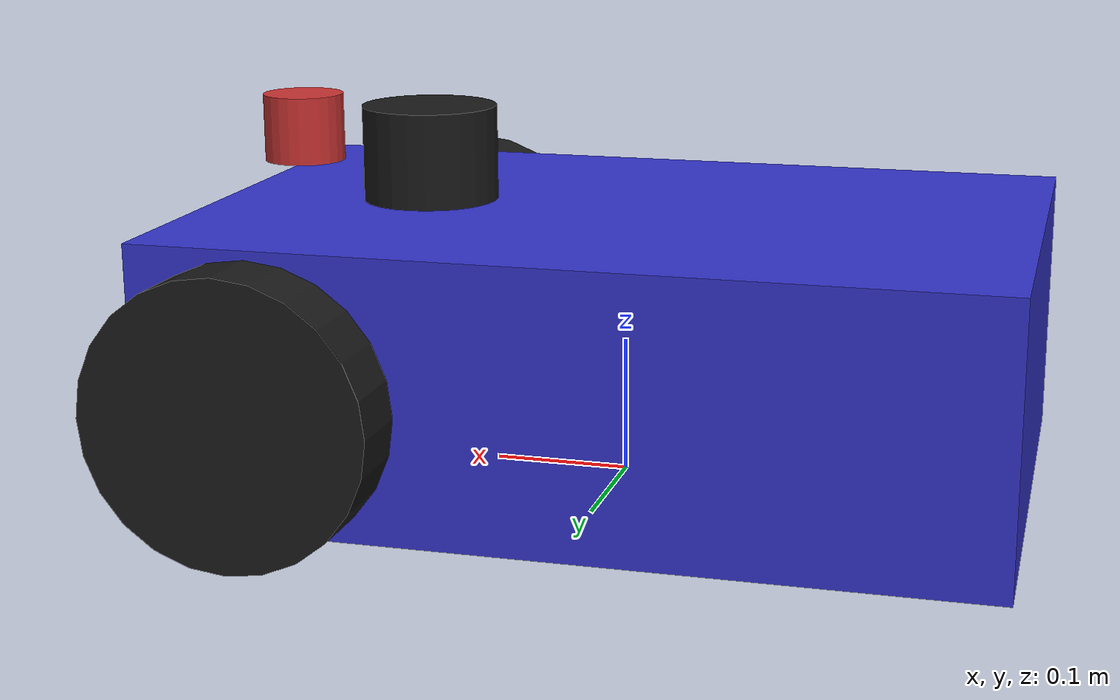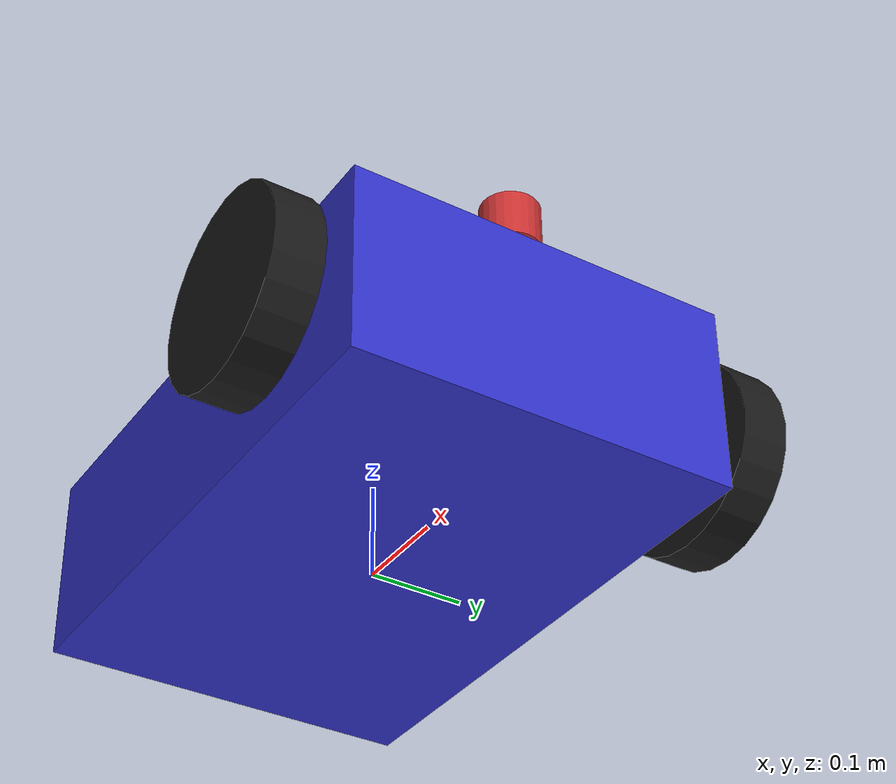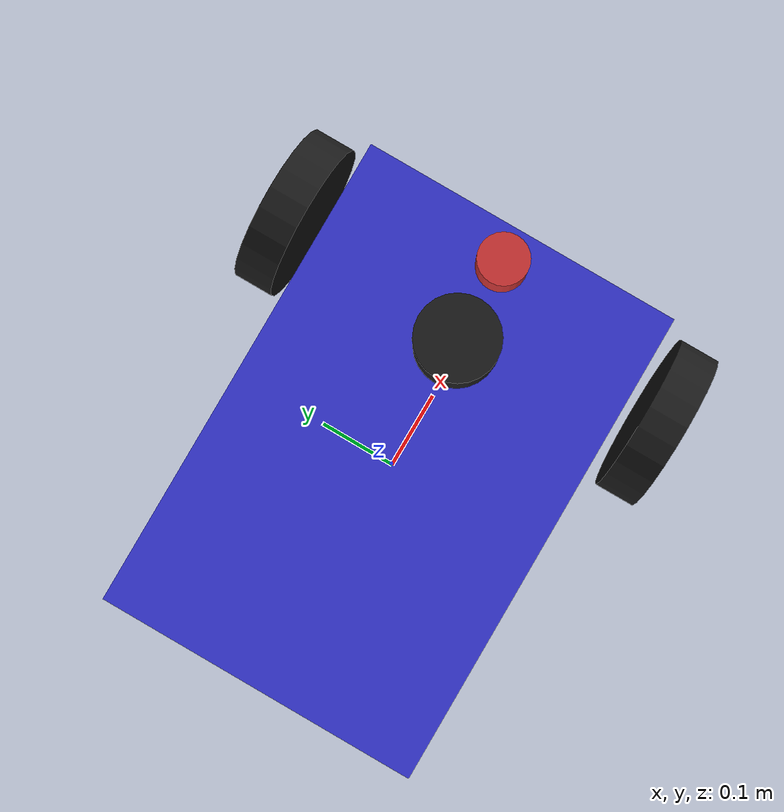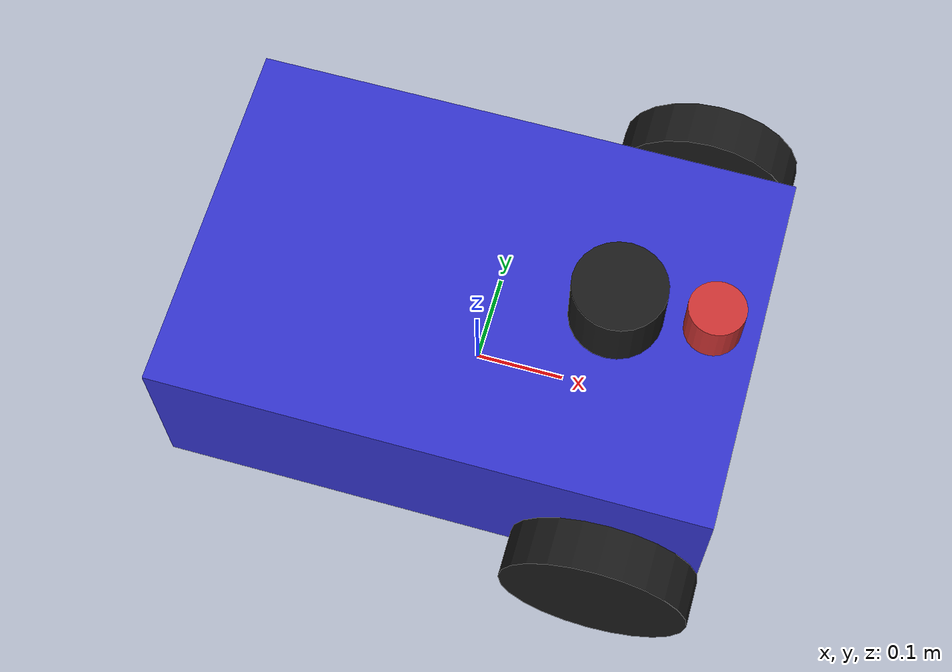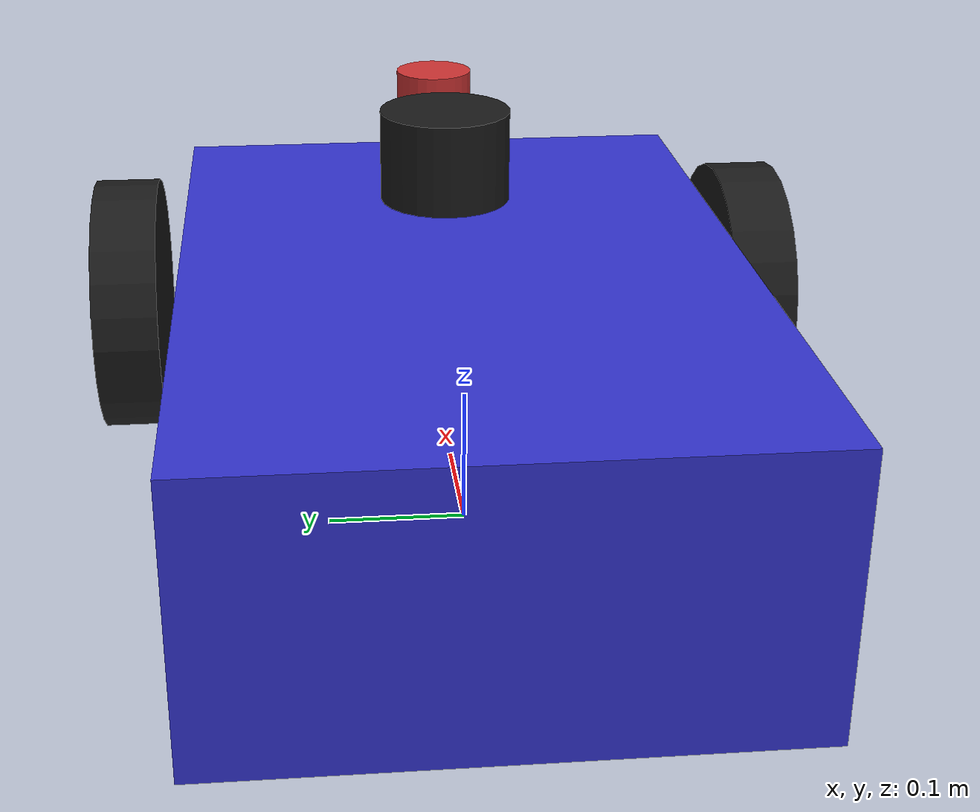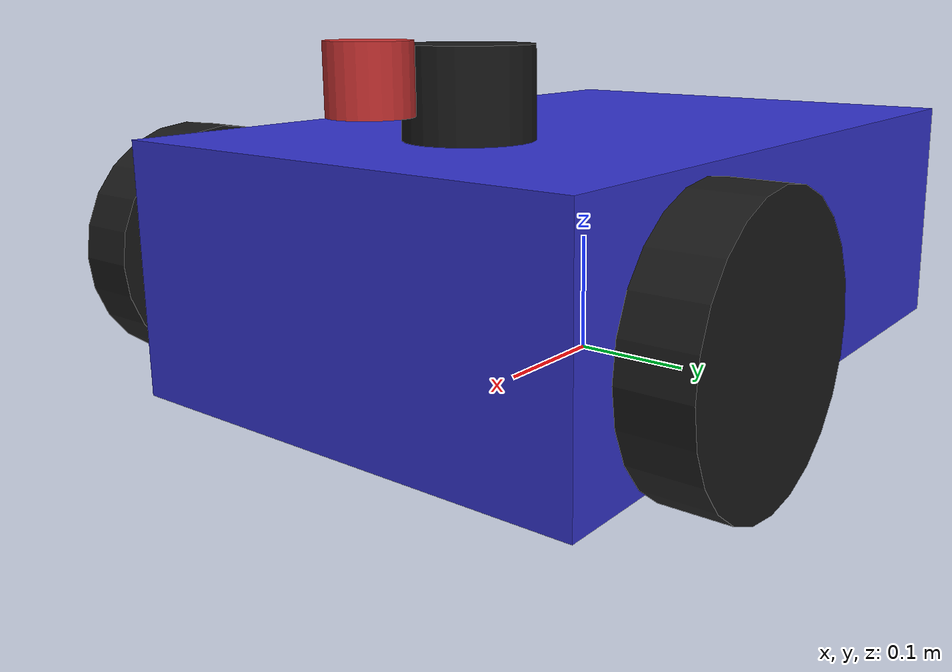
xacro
<?xml version="1.0"?>
<robot xmlns:xacro="http://www.ros.org/wiki/xacro" name="whistle_robot">

  <!-- Define constants -->
  <xacro:property name="base_width" value="0.4"/>
  <xacro:property name="base_length" value="0.6"/>
  <xacro:property name="base_height" value="0.2"/>
  <xacro:property name="wheel_radius" value="0.1"/>
  <xacro:property name="wheel_width" value="0.05"/>
  <xacro:property name="wheel_separation" value="0.5"/>
  <xacro:property name="wheel_base" value="0.4"/>

  <!-- Materials -->
  <material name="blue">
    <color rgba="0.2 0.2 0.8 1.0"/>
  </material>

  <material name="black">
    <color rgba="0.1 0.1 0.1 1.0"/>
  </material>

  <material name="red">
    <color rgba="0.8 0.2 0.2 1.0"/>
  </material>

  <!-- Base Link (Main body) -->
  <link name="base_link">
    <visual>
      <geometry>
        <box size="${base_length} ${base_width} ${base_height}"/>
      </geometry>
      <material name="blue"/>
    </visual>
    <collision>
      <geometry>
        <box size="${base_length} ${base_width} ${base_height}"/>
      </geometry>
    </collision>
    <inertial>
      <mass value="10.0"/>
      <inertia ixx="0.133" ixy="0.0" ixz="0.0"
               iyy="0.433" iyz="0.0" izz="0.5"/>
    </inertial>
  </link>

  <!-- Base Footprint (for navigation) -->
  <link name="base_footprint"/>

  <joint name="base_footprint_joint" type="fixed">
    <parent link="base_footprint"/>
    <child link="base_link"/>
    <origin xyz="0 0 ${wheel_radius}" rpy="0 0 0"/>
  </joint>

  <!-- Wheel macro -->
  <xacro:macro name="wheel" params="prefix reflect">
    <link name="${prefix}_wheel">
      <visual>
        <geometry>
          <cylinder radius="${wheel_radius}" length="${wheel_width}"/>
        </geometry>
        <material name="black"/>
        <origin xyz="0 0 0" rpy="${pi/2} 0 0"/>
      </visual>
      <collision>
        <geometry>
          <cylinder radius="${wheel_radius}" length="${wheel_width}"/>
        </geometry>
        <origin xyz="0 0 0" rpy="${pi/2} 0 0"/>
      </collision>
      <inertial>
        <mass value="1.0"/>
        <inertia ixx="0.00208" ixy="0.0" ixz="0.0"
                 iyy="0.00208" iyz="0.0" izz="0.00417"/>
      </inertial>
    </link>

    <joint name="${prefix}_wheel_joint" type="continuous">
      <parent link="base_link"/>
      <child link="${prefix}_wheel"/>
      <origin xyz="${wheel_base/2} ${reflect * wheel_separation/2} 0" rpy="0 0 0"/>
      <axis xyz="0 1 0"/>
    </joint>
  </xacro:macro>

  <!-- Create wheels -->
  <xacro:wheel prefix="left" reflect="1"/>
  <xacro:wheel prefix="right" reflect="-1"/>

  <!-- Caster wheel (front) -->
  <link name="caster_wheel">
    <visual>
      <geometry>
        <sphere radius="${wheel_radius/2}"/>
      </geometry>
      <material name="black"/>
    </visual>
    <collision>
      <geometry>
        <sphere radius="${wheel_radius/2}"/>
      </geometry>
    </collision>
    <inertial>
      <mass value="0.5"/>
      <inertia ixx="0.0001" ixy="0.0" ixz="0.0"
               iyy="0.0001" iyz="0.0" izz="0.0001"/>
    </inertial>
  </link>

  <joint name="caster_wheel_joint" type="fixed">
    <parent link="base_link"/>
    <child link="caster_wheel"/>
    <origin xyz="-${wheel_base/2} 0 -${wheel_radius/2}" rpy="0 0 0"/>
  </joint>

  <!-- Microphone sensor (visual representation) -->
  <link name="microphone_link">
    <visual>
      <geometry>
        <cylinder radius="0.03" length="0.05"/>
      </geometry>
      <material name="red"/>
      <origin xyz="0 0 0" rpy="0 0 0"/>
    </visual>
    <inertial>
      <mass value="0.1"/>
      <inertia ixx="0.0001" ixy="0.0" ixz="0.0"
               iyy="0.0001" iyz="0.0" izz="0.0001"/>
    </inertial>
  </link>

  <joint name="microphone_joint" type="fixed">
    <parent link="base_link"/>
    <child link="microphone_link"/>
    <origin xyz="0.25 0 ${base_height/2 + 0.05}" rpy="0 0 0"/>
  </joint>
  <!-- Lidar Link -->
  <link name="lidar_link">
    <visual>
      <geometry>
        <cylinder radius="0.05" length="0.07"/>
      </geometry>
      <material name="black"/>
      <origin xyz="0 0 0" rpy="0 0 0"/>
    </visual>
    <collision>
      <geometry>
        <cylinder radius="0.05" length="0.07"/>
      </geometry>
    </collision>
    <inertial>
      <mass value="0.125"/>
      <inertia ixx="0.0001" ixy="0.0" ixz="0.0"
               iyy="0.0001" iyz="0.0" izz="0.0001"/>
    </inertial>
  </link>

  <joint name="lidar_joint" type="fixed">
    <parent link="base_link"/>
    <child link="lidar_link"/>
    <origin xyz="0.15 0 ${base_height/2 + 0.035}" rpy="0 0 0"/>
  </joint>

  <!-- Gazebo Lidar Plugin -->
  <gazebo reference="lidar_link">
    <sensor type="ray" name="lidar_sensor">
      <pose>0 0 0 0 0 0</pose>
      <visualize>true</visualize>
      <update_rate>10</update_rate>
      <ray>
        <scan>
          <horizontal>
            <samples>360</samples>
            <resolution>1</resolution>
            <min_angle>-3.14159</min_angle>
            <max_angle>3.14159</max_angle>
          </horizontal>
        </scan>
        <range>
          <min>0.2</min>
          <max>10.0</max>
          <resolution>0.01</resolution>
        </range>
        <noise>
          <type>gaussian</type>
          <mean>0.0</mean>
          <stddev>0.01</stddev>
        </noise>
      </ray>
      <plugin name="gazebo_ros_lidar" filename="libgazebo_ros_ray_sensor.so">
        <ros>
          <namespace>/</namespace>
          <remapping>~/out:=scan</remapping>
        </ros>
        <output_type>sensor_msgs/LaserScan</output_type>
        <frame_name>lidar_link</frame_name>
      </plugin>
    </sensor>
  </gazebo>

  <!-- Gazebo differential drive plugin -->
  <gazebo>
    <plugin name="differential_drive_controller" filename="libgazebo_ros_diff_drive.so">
      <update_rate>50</update_rate>
      <left_joint>left_wheel_joint</left_joint>
      <right_joint>right_wheel_joint</right_joint>
      <wheel_separation>${wheel_separation}</wheel_separation>
      <wheel_diameter>${2*wheel_radius}</wheel_diameter>
      <max_wheel_torque>20</max_wheel_torque>
      <max_wheel_acceleration>1.0</max_wheel_acceleration>
      <command_topic>cmd_vel</command_topic>
      <publish_odom>true</publish_odom>
      <publish_odom_tf>true</publish_odom_tf>
      <publish_wheel_tf>true</publish_wheel_tf>
      <odometry_topic>odom</odometry_topic>
      <odometry_frame>odom</odometry_frame>
      <robot_base_frame>base_footprint</robot_base_frame>
    </plugin>
  </gazebo>

  <!-- Gazebo colors -->
  <gazebo reference="base_link">
    <material>Gazebo/Blue</material>
  </gazebo>

  <gazebo reference="left_wheel">
    <material>Gazebo/Black</material>
  </gazebo>

  <gazebo reference="right_wheel">
    <material>Gazebo/Black</material>
  </gazebo>

  <gazebo reference="microphone_link">
    <material>Gazebo/Red</material>
  </gazebo>

</robot>
